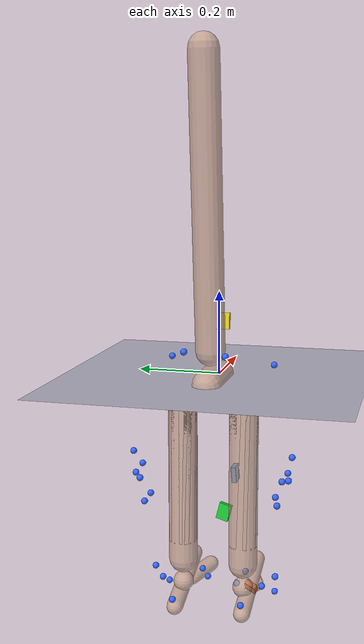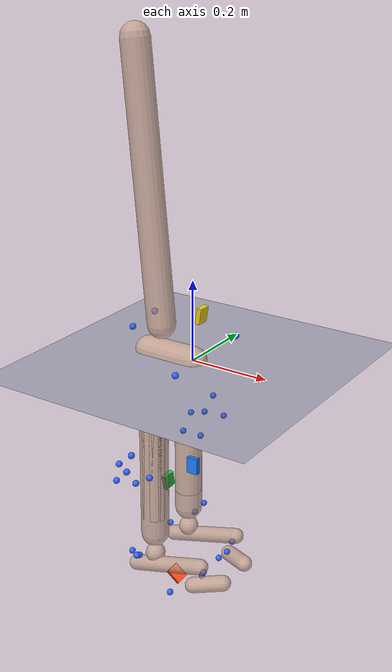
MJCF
<mujoco model="AB18">
  <compiler angle="radian" autolimits="true"/>
  <option timestep="0.005" gravity="0 0 -9.81"><flag contact="disable"/></option>
  <visual><global offwidth="1280" offheight="720"/></visual>
  <default><joint limited="false" damping="0"/><geom contype="0" conaffinity="0"/></default>
  <asset>
    <texture name="grid" type="2d" builtin="checker" rgb1="0.2 0.3 0.4" rgb2="0.3 0.4 0.5" width="512" height="512"/>
    <material name="grid" texture="grid" texrepeat="2 2" texuniform="true"/>
    <material name="skin" rgba="0.8 0.65 0.55 0.7"/>
  </asset>
  <worldbody>
    <light pos="0 0 4" dir="0 0 -1"/>
    <geom name="floor" type="plane" size="0 0 0.05" material="grid"/>
    <body name="pelvis" pos="0 0 0" quat="1 0 0 0">
      <joint name="pelvis_tx" type="slide" axis="1 0 0"/>
      <joint name="pelvis_ty" type="slide" axis="0 0 1"/>
      <joint name="pelvis_tz" type="slide" axis="0 -1 0"/>
      <joint name="pelvis_tilt" type="hinge" axis="0 -1 0"/>
      <joint name="pelvis_list" type="hinge" axis="1 0 0"/>
      <joint name="pelvis_rotation" type="hinge" axis="0 0 1"/>
      <inertial pos="-0.063242296 0 0" mass="9.39691" diaginertia="0.093969058 0.093969058 0.093969058"/>
      <geom type="capsule" fromto="0 0 0 -0.12648459 0 0" size="0.035" material="skin" mass="0"/>
      <site name="m_R_ASIS" pos="0.038340863 -0.12784244 0.018574755" size="0.008" rgba="0.2 0.4 1 1" group="2"/>
      <site name="m_L_ASIS" pos="0.040589419 0.12925634 0.028045488" size="0.008" rgba="0.2 0.4 1 1" group="2"/>
      <site name="m_L_PSIS" pos="-0.14479974 0.048839696 0.079273576" size="0.008" rgba="0.2 0.4 1 1" group="2"/>
      <site name="m_R_PSIS" pos="-0.14063287 -0.046551042 0.071405024" size="0.008" rgba="0.2 0.4 1 1" group="2"/>
      <body name="femur_r" pos="-0.063242296 -0.074692103 -0.059127521" quat="1 0 0 0">
        <joint name="hip_flexion_r" type="hinge" axis="0 -1 0"/>
        <joint name="hip_adduction_r" type="hinge" axis="1 0 0"/>
        <joint name="hip_rotation_r" type="hinge" axis="0 0 1"/>
        <inertial pos="0 0 -0.1742859" mass="7.42162" diaginertia="0.074216167 0.074216167 0.074216167"/>
        <geom type="capsule" fromto="0 0 0 0 0 -0.3485718" size="0.035" material="skin" mass="0"/>
        <site name="m_R_Thigh_Upper" pos="0.017455872 -0.11357388 -0.12490734" size="0.008" rgba="0.2 0.4 1 1" group="2"/>
        <site name="m_R_Thigh_Front" pos="0.057300129 -0.097913778 -0.1789683" size="0.008" rgba="0.2 0.4 1 1" group="2"/>
        <site name="m_R_Thigh_Rear" pos="-0.0016213972 -0.10853877 -0.1768782" size="0.008" rgba="0.2 0.4 1 1" group="2"/>
        <site name="m_R_Knee_Lat" pos="0.00076262967 -0.079702434 -0.4232839" size="0.008" rgba="0.2 0.4 1 1" group="2"/>
        <site name="imu_thigh" type="box" size="0.02 0.015 0.006" pos="0.088037345 0.039168376 -0.19975767" quat="0.51386349 0.44727432 -0.51548747 0.51977174" rgba="0.1 0.5 1 1" group="1"/>
        <body name="tibia_r" pos="0 0 0" quat="1 0 0 0">
          <joint name="knee_r_translation1" type="slide" axis="1 0 0"/>
          <joint name="knee_r_translation2" type="slide" axis="0 0 1"/>
          <joint name="knee_angle_r" type="hinge" axis="0 -1 0"/>
          <inertial pos="0 0 -0.19904865" mass="2.95823" diaginertia="0.029582261 0.029582261 0.029582261"/>
          <geom type="capsule" fromto="0 0 0 0 0 -0.39809729" size="0.035" material="skin" mass="0"/>
          <site name="m_R_Shank_Upper" pos="-0.031610506 -0.098000651 -0.16951193" size="0.008" rgba="0.2 0.4 1 1" group="2"/>
          <site name="m_R_Shank_Front" pos="0.0011793471 -0.077597487 -0.22155953" size="0.008" rgba="0.2 0.4 1 1" group="2"/>
          <site name="m_R_Shank_Rear" pos="-0.047639596 -0.089500063 -0.22367706" size="0.008" rgba="0.2 0.4 1 1" group="2"/>
          <site name="m_R_Ankle_Lat" pos="-0.013631711 -0.049686261 -0.4446729" size="0.008" rgba="0.2 0.4 1 1" group="2"/>
          <site name="imu_shank" type="box" size="0.02 0.015 0.006" pos="0.0071850625 0.048508384 -0.27093903" quat="0.68341146 0.12312677 0.71786929 0.049520147" rgba="0.1 0.8 0.2 1" group="1"/>
          <body name="talus_r" pos="0 0 -0.45844091" quat="1 0 0 0">
            <joint name="ankle_angle_r" type="hinge" axis="-0.10501355 -0.97912632 -0.17402245"/>
            <inertial pos="0 0 0" mass="0.0797903" diaginertia="0.00079790319 0.00079790319 0.00079790319"/>
            <geom type="sphere" size="0.025" material="skin" mass="0"/>
            <body name="calcn_r" pos="-0.051995728 -0.0084438418 -0.044724642" quat="1 0 0 0">
              <joint name="subtalar_angle_r" type="hinge" axis="0.78717961 0.12094949 0.60474746"/>
              <inertial pos="0.096256205 0 0.028876862" mass="0.997379" diaginertia="0.0099737898 0.0099737898 0.0099737898"/>
              <geom type="capsule" fromto="0 0 0 0.19251241 0 0.057753723" size="0.02" material="skin" mass="0"/>
              <site name="m_R_Heel" pos="-0.015121386 -0.00032850646 0.029411324" size="0.008" rgba="0.2 0.4 1 1" group="2"/>
              <site name="m_R_Toe_Lat" pos="0.14127217 -0.056049758 -0.0023273129" size="0.008" rgba="0.2 0.4 1 1" group="2"/>
              <site name="m_R_Toe_Med" pos="0.16668126 0.047835188 -0.0037984096" size="0.008" rgba="0.2 0.4 1 1" group="2"/>
              <site name="m_R_Toe_Tip" pos="0.18405935 0.02796664 0.022792341" size="0.008" rgba="0.2 0.4 1 1" group="2"/>
              <site name="imu_foot" type="box" size="0.02 0.015 0.006" pos="0.12246099 0.00063624438 0.012253048" quat="0.90215849 0.21688502 0.3719974 -0.026246332" rgba="1 0.3 0.1 1" group="1"/>
              <body name="toes_r" pos="0.1721061 -0.001039567 -0.0019251241" quat="1 0 0 0">
                <joint name="mtp_angle_r" type="hinge" axis="-0.5809544 -0.81393611 0"/>
                <inertial pos="0.033304647 0.016844836 0.0057753723" mass="0.172826" diaginertia="0.0017282583 0.0017282583 0.0017282583"/>
                <geom type="capsule" fromto="0 0 0 0.066609294 0.033689672 0.011550745" size="0.02" material="skin" mass="0"/>
              </body>
            </body>
          </body>
        </body>
      </body>
      <body name="femur_l" pos="-0.063242296 0.074692103 -0.059127521" quat="1 0 0 0">
        <joint name="hip_flexion_l" type="hinge" axis="0 -1 0"/>
        <joint name="hip_adduction_l" type="hinge" axis="-1 0 0"/>
        <joint name="hip_rotation_l" type="hinge" axis="0 0 -1"/>
        <inertial pos="0 0 -0.1742859" mass="7.42162" diaginertia="0.074216167 0.074216167 0.074216167"/>
        <geom type="capsule" fromto="0 0 0 0 0 -0.3485718" size="0.035" material="skin" mass="0"/>
        <site name="m_L_Thigh_Upper" pos="-0.0053726371 0.1229241 -0.13003535" size="0.008" rgba="0.2 0.4 1 1" group="2"/>
        <site name="m_L_Thigh_Front" pos="0.034218828 0.11320389 -0.17366738" size="0.008" rgba="0.2 0.4 1 1" group="2"/>
        <site name="m_L_Thigh_Rear" pos="-0.024698934 0.1114287 -0.17773882" size="0.008" rgba="0.2 0.4 1 1" group="2"/>
        <site name="m_L_Knee_Lat" pos="0.00097664924 0.071736656 -0.42670212" size="0.008" rgba="0.2 0.4 1 1" group="2"/>
        <body name="tibia_l" pos="0 0 0" quat="1 0 0 0">
          <joint name="knee_l_translation1" type="slide" axis="1 0 0"/>
          <joint name="knee_l_translation2" type="slide" axis="0 0 1"/>
          <joint name="knee_angle_l" type="hinge" axis="0 -1 0"/>
          <inertial pos="0 0 -0.19904865" mass="2.95823" diaginertia="0.029582261 0.029582261 0.029582261"/>
          <geom type="capsule" fromto="0 0 0 0 0 -0.39809729" size="0.035" material="skin" mass="0"/>
          <site name="m_L_Shank_Upper" pos="-0.054344021 0.091687975 -0.17998403" size="0.008" rgba="0.2 0.4 1 1" group="2"/>
          <site name="m_L_Shank_Front" pos="-0.014540529 0.077810993 -0.23112919" size="0.008" rgba="0.2 0.4 1 1" group="2"/>
          <site name="m_L_Shank_Rear" pos="-0.068640459 0.076451211 -0.23209915" size="0.008" rgba="0.2 0.4 1 1" group="2"/>
          <site name="m_L_Ankle_Lat" pos="-0.01314004 0.048997057 -0.44759167" size="0.008" rgba="0.2 0.4 1 1" group="2"/>
          <body name="talus_l" pos="0 0 -0.45844091" quat="1 0 0 0">
            <joint name="ankle_angle_l" type="hinge" axis="0.10501355 -0.97912632 0.17402245"/>
            <inertial pos="0 0 0" mass="0.0797903" diaginertia="0.00079790319 0.00079790319 0.00079790319"/>
            <geom type="sphere" size="0.025" material="skin" mass="0"/>
            <body name="calcn_l" pos="-0.051995728 0.0084438418 -0.044724642" quat="1 0 0 0">
              <joint name="subtalar_angle_l" type="hinge" axis="-0.78717961 0.12094949 -0.60474746"/>
              <inertial pos="0.096256205 0 0.028876862" mass="0.997379" diaginertia="0.0099737898 0.0099737898 0.0099737898"/>
              <geom type="capsule" fromto="0 0 0 0.19251241 0 0.057753723" size="0.02" material="skin" mass="0"/>
              <site name="m_L_Heel" pos="-0.013920675 0.0017904602 0.024537086" size="0.008" rgba="0.2 0.4 1 1" group="2"/>
              <site name="m_L_Toe_Lat" pos="0.14793309 0.055495436 -0.0063519271" size="0.008" rgba="0.2 0.4 1 1" group="2"/>
              <site name="m_L_Toe_Med" pos="0.16827988 -0.042106411 0.0053571266" size="0.008" rgba="0.2 0.4 1 1" group="2"/>
              <site name="m_L_Toe_Tip" pos="0.18182316 -0.024744069 0.019536746" size="0.008" rgba="0.2 0.4 1 1" group="2"/>
              <body name="toes_l" pos="0.1721061 0.001039567 -0.0019251241" quat="1 0 0 0">
                <joint name="mtp_angle_l" type="hinge" axis="0.5809544 -0.81393611 0"/>
                <inertial pos="0.033304647 -0.016844836 0.0057753723" mass="0.172826" diaginertia="0.0017282583 0.0017282583 0.0017282583"/>
                <geom type="capsule" fromto="0 0 0 0.066609294 -0.033689672 0.011550745" size="0.02" material="skin" mass="0"/>
              </body>
            </body>
          </body>
        </body>
      </body>
      <body name="torso" pos="-0.090077782 0 0.072903071" quat="1 0 0 0">
        <joint name="lumbar_extension" type="hinge" axis="0 -1 0"/>
        <joint name="lumbar_bending" type="hinge" axis="1 0 0"/>
        <joint name="lumbar_rotation" type="hinge" axis="0 0 1"/>
        <inertial pos="-0.031160604 0 0.33237977" mass="27.3175" diaginertia="0.27317492 0.27317492 0.27317492"/>
        <geom type="capsule" fromto="0 0 0 -0.062321208 0 0.66475955" size="0.035" material="skin" mass="0"/>
        <site name="imu_trunk" type="box" size="0.02 0.015 0.006" pos="0.11789657 -0.0045308556 0.051042142" quat="0.6525428 0.0059082947 0.75768503 -0.0081478606" rgba="0.9 0.8 0.1 1" group="1"/>
      </body>
    </body>
  </worldbody>
  <sensor>
<accelerometer name="imu_foot_acc" site="imu_foot"/>
<gyro name="imu_foot_gyr" site="imu_foot"/>
<accelerometer name="imu_shank_acc" site="imu_shank"/>
<gyro name="imu_shank_gyr" site="imu_shank"/>
<accelerometer name="imu_thigh_acc" site="imu_thigh"/>
<gyro name="imu_thigh_gyr" site="imu_thigh"/>
<accelerometer name="imu_trunk_acc" site="imu_trunk"/>
<gyro name="imu_trunk_gyr" site="imu_trunk"/>
</sensor>
</mujoco>
